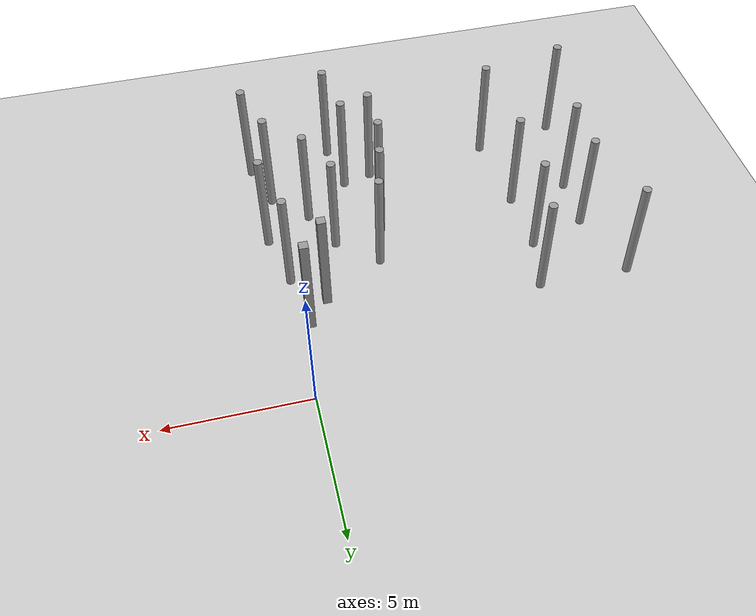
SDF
<sdf version="1.6">
 <world name="default">
  <model name="ground_plane">
   <static>1</static>
   <link name="link">
    <collision name="collision">
     <geometry><plane><normal>0 0 1</normal><size>100 100</size></plane></geometry>
    </collision>
    <visual name="visual">
     <cast_shadows>0</cast_shadows>
     <geometry><plane><normal>0 0 1</normal><size>100 100</size></plane></geometry>
     <material>
      <script><uri>file://media/materials/scripts/gazebo.material</uri><name>Gazebo/Gray</name></script>
     </material>
    </visual>
   </link>
  </model>
  <model name="unit_cylinder_clone_1_clone">
   <link name="link">
    <inertial>
     <mass>1000</mass>
     <inertia><ixx>145.833</ixx><ixy>0</ixy><ixz>0</ixz><iyy>145.833</iyy><iyz>0</iyz><izz>125</izz></inertia>
    </inertial>
    <visual name="visual">
     <geometry><cylinder><radius>0.15</radius><length>4</length></cylinder></geometry>
     <material>
      <script><name>Gazebo/Grey</name><uri>file://media/materials/scripts/gazebo.material</uri></script>
      <shader type="vertex"><normal_map>__default__</normal_map></shader>
      <ambient>0.3 0.3 0.3 1</ambient>
      <diffuse>0.7 0.7 0.7 1</diffuse>
      <specular>0.01 0.01 0.01 1</specular>
      <emissive>0 0 0 1</emissive>
     </material>
    </visual>
    <collision name="collision">
     <geometry><cylinder><radius>0.15</radius><length>4</length></cylinder></geometry>
     <surface>
      <friction>
       <ode><mu>1</mu><mu2>1</mu2><fdir1>0 0 0</fdir1><slip1>0</slip1><slip2>0</slip2></ode>
       <torsional>
        <coefficient>1</coefficient>
        <patch_radius>0</patch_radius>
        <surface_radius>0</surface_radius>
        <use_patch_radius>1</use_patch_radius>
        <ode><slip>0</slip></ode>
       </torsional>
      </friction>
      <bounce><restitution_coefficient>0</restitution_coefficient><threshold>1e+06</threshold></bounce>
      <contact>
       <collide_without_contact>0</collide_without_contact>
       <collide_without_contact_bitmask>1</collide_without_contact_bitmask>
       <collide_bitmask>1</collide_bitmask>
       <ode>
        <soft_cfm>0</soft_cfm>
        <soft_erp>0.2</soft_erp>
        <kp>1e+13</kp>
        <kd>1</kd>
        <max_vel>0.01</max_vel>
        <min_depth>0</min_depth>
       </ode>
       <bullet>
        <split_impulse>1</split_impulse>
        <split_impulse_penetration_threshold>-0.01</split_impulse_penetration_threshold>
        <soft_cfm>0</soft_cfm>
        <soft_erp>0.2</soft_erp>
        <kp>1e+13</kp>
        <kd>1</kd>
       </bullet>
      </contact>
     </surface>
    </collision>
   </link>
   <static>0</static>
   <pose>-1.24219 -8.02997 1.99995 -0.000268 5e-05 -0.609629</pose>
  </model>
  <model name="unit_cylinder_clone_1_clone_0">
   <link name="link">
    <inertial>
     <mass>1000</mass>
     <inertia><ixx>145.833</ixx><ixy>0</ixy><ixz>0</ixz><iyy>145.833</iyy><iyz>0</iyz><izz>125</izz></inertia>
    </inertial>
    <visual name="visual">
     <geometry><cylinder><radius>0.15</radius><length>4</length></cylinder></geometry>
     <material>
      <script><name>Gazebo/Grey</name><uri>file://media/materials/scripts/gazebo.material</uri></script>
      <shader type="vertex"><normal_map>__default__</normal_map></shader>
      <ambient>0.3 0.3 0.3 1</ambient>
      <diffuse>0.7 0.7 0.7 1</diffuse>
      <specular>0.01 0.01 0.01 1</specular>
      <emissive>0 0 0 1</emissive>
     </material>
    </visual>
    <collision name="collision">
     <geometry><cylinder><radius>0.15</radius><length>4</length></cylinder></geometry>
     <surface>
      <friction>
       <ode><mu>1</mu><mu2>1</mu2><fdir1>0 0 0</fdir1><slip1>0</slip1><slip2>0</slip2></ode>
       <torsional>
        <coefficient>1</coefficient>
        <patch_radius>0</patch_radius>
        <surface_radius>0</surface_radius>
        <use_patch_radius>1</use_patch_radius>
        <ode><slip>0</slip></ode>
       </torsional>
      </friction>
      <bounce><restitution_coefficient>0</restitution_coefficient><threshold>1e+06</threshold></bounce>
      <contact>
       <collide_without_contact>0</collide_without_contact>
       <collide_without_contact_bitmask>1</collide_without_contact_bitmask>
       <collide_bitmask>1</collide_bitmask>
       <ode>
        <soft_cfm>0</soft_cfm>
        <soft_erp>0.2</soft_erp>
        <kp>1e+13</kp>
        <kd>1</kd>
        <max_vel>0.01</max_vel>
        <min_depth>0</min_depth>
       </ode>
       <bullet>
        <split_impulse>1</split_impulse>
        <split_impulse_penetration_threshold>-0.01</split_impulse_penetration_threshold>
        <soft_cfm>0</soft_cfm>
        <soft_erp>0.2</soft_erp>
        <kp>1e+13</kp>
        <kd>1</kd>
       </bullet>
      </contact>
     </surface>
    </collision>
   </link>
   <static>0</static>
   <pose>-8.58132 -2.84777 1.99995 -0.000268 4.9e-05 -0.612535</pose>
  </model>
  <model name="unit_cylinder_clone_1_clone_1">
   <link name="link">
    <inertial>
     <mass>1000</mass>
     <inertia><ixx>145.833</ixx><ixy>0</ixy><ixz>0</ixz><iyy>145.833</iyy><iyz>0</iyz><izz>125</izz></inertia>
    </inertial>
    <visual name="visual">
     <geometry><cylinder><radius>0.15</radius><length>4</length></cylinder></geometry>
     <material>
      <script><name>Gazebo/Grey</name><uri>file://media/materials/scripts/gazebo.material</uri></script>
      <shader type="vertex"><normal_map>__default__</normal_map></shader>
      <ambient>0.3 0.3 0.3 1</ambient>
      <diffuse>0.7 0.7 0.7 1</diffuse>
      <specular>0.01 0.01 0.01 1</specular>
      <emissive>0 0 0 1</emissive>
     </material>
    </visual>
    <collision name="collision">
     <geometry><cylinder><radius>0.15</radius><length>4</length></cylinder></geometry>
     <surface>
      <friction>
       <ode><mu>1</mu><mu2>1</mu2><fdir1>0 0 0</fdir1><slip1>0</slip1><slip2>0</slip2></ode>
       <torsional>
        <coefficient>1</coefficient>
        <patch_radius>0</patch_radius>
        <surface_radius>0</surface_radius>
        <use_patch_radius>1</use_patch_radius>
        <ode><slip>0</slip></ode>
       </torsional>
      </friction>
      <bounce><restitution_coefficient>0</restitution_coefficient><threshold>1e+06</threshold></bounce>
      <contact>
       <collide_without_contact>0</collide_without_contact>
       <collide_without_contact_bitmask>1</collide_without_contact_bitmask>
       <collide_bitmask>1</collide_bitmask>
       <ode>
        <soft_cfm>0</soft_cfm>
        <soft_erp>0.2</soft_erp>
        <kp>1e+13</kp>
        <kd>1</kd>
        <max_vel>0.01</max_vel>
        <min_depth>0</min_depth>
       </ode>
       <bullet>
        <split_impulse>1</split_impulse>
        <split_impulse_penetration_threshold>-0.01</split_impulse_penetration_threshold>
        <soft_cfm>0</soft_cfm>
        <soft_erp>0.2</soft_erp>
        <kp>1e+13</kp>
        <kd>1</kd>
       </bullet>
      </contact>
     </surface>
    </collision>
   </link>
   <static>0</static>
   <pose>-11.8187 -2.82498 1.99995 -0.000268 4.8e-05 -0.615928</pose>
  </model>
  <model name="unit_cylinder_clone_1_clone_2">
   <link name="link">
    <inertial>
     <mass>1000</mass>
     <inertia><ixx>145.833</ixx><ixy>0</ixy><ixz>0</ixz><iyy>145.833</iyy><iyz>0</iyz><izz>125</izz></inertia>
    </inertial>
    <visual name="visual">
     <geometry><cylinder><radius>0.15</radius><length>4</length></cylinder></geometry>
     <material>
      <script><name>Gazebo/Grey</name><uri>file://media/materials/scripts/gazebo.material</uri></script>
      <shader type="vertex"><normal_map>__default__</normal_map></shader>
      <ambient>0.3 0.3 0.3 1</ambient>
      <diffuse>0.7 0.7 0.7 1</diffuse>
      <specular>0.01 0.01 0.01 1</specular>
      <emissive>0 0 0 1</emissive>
     </material>
    </visual>
    <collision name="collision">
     <geometry><cylinder><radius>0.15</radius><length>4</length></cylinder></geometry>
     <surface>
      <friction>
       <ode><mu>1</mu><mu2>1</mu2><fdir1>0 0 0</fdir1><slip1>0</slip1><slip2>0</slip2></ode>
       <torsional>
        <coefficient>1</coefficient>
        <patch_radius>0</patch_radius>
        <surface_radius>0</surface_radius>
        <use_patch_radius>1</use_patch_radius>
        <ode><slip>0</slip></ode>
       </torsional>
      </friction>
      <bounce><restitution_coefficient>0</restitution_coefficient><threshold>1e+06</threshold></bounce>
      <contact>
       <collide_without_contact>0</collide_without_contact>
       <collide_without_contact_bitmask>1</collide_without_contact_bitmask>
       <collide_bitmask>1</collide_bitmask>
       <ode>
        <soft_cfm>0</soft_cfm>
        <soft_erp>0.2</soft_erp>
        <kp>1e+13</kp>
        <kd>1</kd>
        <max_vel>0.01</max_vel>
        <min_depth>0</min_depth>
       </ode>
       <bullet>
        <split_impulse>1</split_impulse>
        <split_impulse_penetration_threshold>-0.01</split_impulse_penetration_threshold>
        <soft_cfm>0</soft_cfm>
        <soft_erp>0.2</soft_erp>
        <kp>1e+13</kp>
        <kd>1</kd>
       </bullet>
      </contact>
     </surface>
    </collision>
   </link>
   <static>0</static>
   <pose>-3.71601 -6.77769 1.99995 -0.000268 4.9e-05 -0.611275</pose>
  </model>
  <model name="unit_cylinder_clone_1_clone_4">
   <link name="link">
    <inertial>
     <mass>1000</mass>
     <inertia><ixx>145.833</ixx><ixy>0</ixy><ixz>0</ixz><iyy>145.833</iyy><iyz>0</iyz><izz>125</izz></inertia>
    </inertial>
    <visual name="visual">
     <geometry><cylinder><radius>0.15</radius><length>4</length></cylinder></geometry>
     <material>
      <script><name>Gazebo/Grey</name><uri>file://media/materials/scripts/gazebo.material</uri></script>
      <shader type="vertex"><normal_map>__default__</normal_map></shader>
      <ambient>0.3 0.3 0.3 1</ambient>
      <diffuse>0.7 0.7 0.7 1</diffuse>
      <specular>0.01 0.01 0.01 1</specular>
      <emissive>0 0 0 1</emissive>
     </material>
    </visual>
    <collision name="collision">
     <geometry><cylinder><radius>0.15</radius><length>4</length></cylinder></geometry>
     <surface>
      <friction>
       <ode><mu>1</mu><mu2>1</mu2><fdir1>0 0 0</fdir1><slip1>0</slip1><slip2>0</slip2></ode>
       <torsional>
        <coefficient>1</coefficient>
        <patch_radius>0</patch_radius>
        <surface_radius>0</surface_radius>
        <use_patch_radius>1</use_patch_radius>
        <ode><slip>0</slip></ode>
       </torsional>
      </friction>
      <bounce><restitution_coefficient>0</restitution_coefficient><threshold>1e+06</threshold></bounce>
      <contact>
       <collide_without_contact>0</collide_without_contact>
       <collide_without_contact_bitmask>1</collide_without_contact_bitmask>
       <collide_bitmask>1</collide_bitmask>
       <ode>
        <soft_cfm>0</soft_cfm>
        <soft_erp>0.2</soft_erp>
        <kp>1e+13</kp>
        <kd>1</kd>
        <max_vel>0.01</max_vel>
        <min_depth>0</min_depth>
       </ode>
       <bullet>
        <split_impulse>1</split_impulse>
        <split_impulse_penetration_threshold>-0.01</split_impulse_penetration_threshold>
        <soft_cfm>0</soft_cfm>
        <soft_erp>0.2</soft_erp>
        <kp>1e+13</kp>
        <kd>1</kd>
       </bullet>
      </contact>
     </surface>
    </collision>
   </link>
   <static>0</static>
   <pose>-8.97423 -4.77599 1.99995 -0.000268 4.8e-05 -0.61789</pose>
  </model>
  <model name="unit_cylinder_clone_1_clone_6">
   <link name="link">
    <inertial>
     <mass>1000</mass>
     <inertia><ixx>145.833</ixx><ixy>0</ixy><ixz>0</ixz><iyy>145.833</iyy><iyz>0</iyz><izz>125</izz></inertia>
    </inertial>
    <visual name="visual">
     <geometry><cylinder><radius>0.15</radius><length>4</length></cylinder></geometry>
     <material>
      <script><name>Gazebo/Grey</name><uri>file://media/materials/scripts/gazebo.material</uri></script>
      <shader type="vertex"><normal_map>__default__</normal_map></shader>
      <ambient>0.3 0.3 0.3 1</ambient>
      <diffuse>0.7 0.7 0.7 1</diffuse>
      <specular>0.01 0.01 0.01 1</specular>
      <emissive>0 0 0 1</emissive>
     </material>
    </visual>
    <collision name="collision">
     <geometry><cylinder><radius>0.15</radius><length>4</length></cylinder></geometry>
     <surface>
      <friction>
       <ode><mu>1</mu><mu2>1</mu2><fdir1>0 0 0</fdir1><slip1>0</slip1><slip2>0</slip2></ode>
       <torsional>
        <coefficient>1</coefficient>
        <patch_radius>0</patch_radius>
        <surface_radius>0</surface_radius>
        <use_patch_radius>1</use_patch_radius>
        <ode><slip>0</slip></ode>
       </torsional>
      </friction>
      <bounce><restitution_coefficient>0</restitution_coefficient><threshold>1e+06</threshold></bounce>
      <contact>
       <collide_without_contact>0</collide_without_contact>
       <collide_without_contact_bitmask>1</collide_without_contact_bitmask>
       <collide_bitmask>1</collide_bitmask>
       <ode>
        <soft_cfm>0</soft_cfm>
        <soft_erp>0.2</soft_erp>
        <kp>1e+13</kp>
        <kd>1</kd>
        <max_vel>0.01</max_vel>
        <min_depth>0</min_depth>
       </ode>
       <bullet>
        <split_impulse>1</split_impulse>
        <split_impulse_penetration_threshold>-0.01</split_impulse_penetration_threshold>
        <soft_cfm>0</soft_cfm>
        <soft_erp>0.2</soft_erp>
        <kp>1e+13</kp>
        <kd>1</kd>
       </bullet>
      </contact>
     </surface>
    </collision>
   </link>
   <static>0</static>
   <pose>-3.34627 -5.28496 1.99998 -1e-06 1e-06 -0.15048</pose>
  </model>
  <model name="unit_cylinder_clone_1_clone_10">
   <link name="link">
    <inertial>
     <mass>1000</mass>
     <inertia><ixx>145.833</ixx><ixy>0</ixy><ixz>0</ixz><iyy>145.833</iyy><iyz>0</iyz><izz>125</izz></inertia>
    </inertial>
    <visual name="visual">
     <geometry><cylinder><radius>0.15</radius><length>4</length></cylinder></geometry>
     <material>
      <script><name>Gazebo/Grey</name><uri>file://media/materials/scripts/gazebo.material</uri></script>
      <shader type="vertex"><normal_map>__default__</normal_map></shader>
      <ambient>0.3 0.3 0.3 1</ambient>
      <diffuse>0.7 0.7 0.7 1</diffuse>
      <specular>0.01 0.01 0.01 1</specular>
      <emissive>0 0 0 1</emissive>
     </material>
    </visual>
    <collision name="collision">
     <geometry><cylinder><radius>0.15</radius><length>4</length></cylinder></geometry>
     <surface>
      <friction>
       <ode><mu>1</mu><mu2>1</mu2><fdir1>0 0 0</fdir1><slip1>0</slip1><slip2>0</slip2></ode>
       <torsional>
        <coefficient>1</coefficient>
        <patch_radius>0</patch_radius>
        <surface_radius>0</surface_radius>
        <use_patch_radius>1</use_patch_radius>
        <ode><slip>0</slip></ode>
       </torsional>
      </friction>
      <bounce><restitution_coefficient>0</restitution_coefficient><threshold>1e+06</threshold></bounce>
      <contact>
       <collide_without_contact>0</collide_without_contact>
       <collide_without_contact_bitmask>1</collide_without_contact_bitmask>
       <collide_bitmask>1</collide_bitmask>
       <ode>
        <soft_cfm>0</soft_cfm>
        <soft_erp>0.2</soft_erp>
        <kp>1e+13</kp>
        <kd>1</kd>
        <max_vel>0.01</max_vel>
        <min_depth>0</min_depth>
       </ode>
       <bullet>
        <split_impulse>1</split_impulse>
        <split_impulse_penetration_threshold>-0.01</split_impulse_penetration_threshold>
        <soft_cfm>0</soft_cfm>
        <soft_erp>0.2</soft_erp>
        <kp>1e+13</kp>
        <kd>1</kd>
       </bullet>
      </contact>
     </surface>
    </collision>
   </link>
   <static>0</static>
   <pose>-0.053584 -5.11288 1.99998 -2e-06 -1e-06 -0.123791</pose>
  </model>
  <model name="unit_cylinder_clone_1_clone_15">
   <link name="link">
    <inertial>
     <mass>1000</mass>
     <inertia><ixx>145.833</ixx><ixy>0</ixy><ixz>0</ixz><iyy>145.833</iyy><iyz>0</iyz><izz>125</izz></inertia>
    </inertial>
    <visual name="visual">
     <geometry><cylinder><radius>0.15</radius><length>4</length></cylinder></geometry>
     <material>
      <script><name>Gazebo/Grey</name><uri>file://media/materials/scripts/gazebo.material</uri></script>
      <shader type="vertex"><normal_map>__default__</normal_map></shader>
      <ambient>0.3 0.3 0.3 1</ambient>
      <diffuse>0.7 0.7 0.7 1</diffuse>
      <specular>0.01 0.01 0.01 1</specular>
      <emissive>0 0 0 1</emissive>
     </material>
    </visual>
    <collision name="collision">
     <geometry><cylinder><radius>0.15</radius><length>4</length></cylinder></geometry>
     <surface>
      <friction>
       <ode><mu>1</mu><mu2>1</mu2><fdir1>0 0 0</fdir1><slip1>0</slip1><slip2>0</slip2></ode>
       <torsional>
        <coefficient>1</coefficient>
        <patch_radius>0</patch_radius>
        <surface_radius>0</surface_radius>
        <use_patch_radius>1</use_patch_radius>
        <ode><slip>0</slip></ode>
       </torsional>
      </friction>
      <bounce><restitution_coefficient>0</restitution_coefficient><threshold>1e+06</threshold></bounce>
      <contact>
       <collide_without_contact>0</collide_without_contact>
       <collide_without_contact_bitmask>1</collide_without_contact_bitmask>
       <collide_bitmask>1</collide_bitmask>
       <ode>
        <soft_cfm>0</soft_cfm>
        <soft_erp>0.2</soft_erp>
        <kp>1e+13</kp>
        <kd>1</kd>
        <max_vel>0.01</max_vel>
        <min_depth>0</min_depth>
       </ode>
       <bullet>
        <split_impulse>1</split_impulse>
        <split_impulse_penetration_threshold>-0.01</split_impulse_penetration_threshold>
        <soft_cfm>0</soft_cfm>
        <soft_erp>0.2</soft_erp>
        <kp>1e+13</kp>
        <kd>1</kd>
       </bullet>
      </contact>
     </surface>
    </collision>
   </link>
   <static>0</static>
   <pose>-11.0822 -7.38638 1.99995 -0.000268 4.9e-05 -0.6131</pose>
  </model>
  <model name="unit_cylinder_clone_1_clone_16">
   <link name="link">
    <inertial>
     <mass>1000</mass>
     <inertia><ixx>145.833</ixx><ixy>0</ixy><ixz>0</ixz><iyy>145.833</iyy><iyz>0</iyz><izz>125</izz></inertia>
    </inertial>
    <visual name="visual">
     <geometry><cylinder><radius>0.15</radius><length>4</length></cylinder></geometry>
     <material>
      <script><name>Gazebo/Grey</name><uri>file://media/materials/scripts/gazebo.material</uri></script>
      <shader type="vertex"><normal_map>__default__</normal_map></shader>
      <ambient>0.3 0.3 0.3 1</ambient>
      <diffuse>0.7 0.7 0.7 1</diffuse>
      <specular>0.01 0.01 0.01 1</specular>
      <emissive>0 0 0 1</emissive>
     </material>
    </visual>
    <collision name="collision">
     <geometry><cylinder><radius>0.15</radius><length>4</length></cylinder></geometry>
     <surface>
      <friction>
       <ode><mu>1</mu><mu2>1</mu2><fdir1>0 0 0</fdir1><slip1>0</slip1><slip2>0</slip2></ode>
       <torsional>
        <coefficient>1</coefficient>
        <patch_radius>0</patch_radius>
        <surface_radius>0</surface_radius>
        <use_patch_radius>1</use_patch_radius>
        <ode><slip>0</slip></ode>
       </torsional>
      </friction>
      <bounce><restitution_coefficient>0</restitution_coefficient><threshold>1e+06</threshold></bounce>
      <contact>
       <collide_without_contact>0</collide_without_contact>
       <collide_without_contact_bitmask>1</collide_without_contact_bitmask>
       <collide_bitmask>1</collide_bitmask>
       <ode>
        <soft_cfm>0</soft_cfm>
        <soft_erp>0.2</soft_erp>
        <kp>1e+13</kp>
        <kd>1</kd>
        <max_vel>0.01</max_vel>
        <min_depth>0</min_depth>
       </ode>
       <bullet>
        <split_impulse>1</split_impulse>
        <split_impulse_penetration_threshold>-0.01</split_impulse_penetration_threshold>
        <soft_cfm>0</soft_cfm>
        <soft_erp>0.2</soft_erp>
        <kp>1e+13</kp>
        <kd>1</kd>
       </bullet>
      </contact>
     </surface>
    </collision>
   </link>
   <static>0</static>
   <pose>-1.95649 -6.46922 1.99995 -0.000268 4.9e-05 -0.614828</pose>
  </model>
  <model name="unit_cylinder_clone_1_clone_17">
   <link name="link">
    <inertial>
     <mass>1000</mass>
     <inertia><ixx>145.833</ixx><ixy>0</ixy><ixz>0</ixz><iyy>145.833</iyy><iyz>0</iyz><izz>125</izz></inertia>
    </inertial>
    <visual name="visual">
     <geometry><cylinder><radius>0.15</radius><length>4</length></cylinder></geometry>
     <material>
      <script><name>Gazebo/Grey</name><uri>file://media/materials/scripts/gazebo.material</uri></script>
      <shader type="vertex"><normal_map>__default__</normal_map></shader>
      <ambient>0.3 0.3 0.3 1</ambient>
      <diffuse>0.7 0.7 0.7 1</diffuse>
      <specular>0.01 0.01 0.01 1</specular>
      <emissive>0 0 0 1</emissive>
     </material>
    </visual>
    <collision name="collision">
     <geometry><cylinder><radius>0.15</radius><length>4</length></cylinder></geometry>
     <surface>
      <friction>
       <ode><mu>1</mu><mu2>1</mu2><fdir1>0 0 0</fdir1><slip1>0</slip1><slip2>0</slip2></ode>
       <torsional>
        <coefficient>1</coefficient>
        <patch_radius>0</patch_radius>
        <surface_radius>0</surface_radius>
        <use_patch_radius>1</use_patch_radius>
        <ode><slip>0</slip></ode>
       </torsional>
      </friction>
      <bounce><restitution_coefficient>0</restitution_coefficient><threshold>1e+06</threshold></bounce>
      <contact>
       <collide_without_contact>0</collide_without_contact>
       <collide_without_contact_bitmask>1</collide_without_contact_bitmask>
       <collide_bitmask>1</collide_bitmask>
       <ode>
        <soft_cfm>0</soft_cfm>
        <soft_erp>0.2</soft_erp>
        <kp>1e+13</kp>
        <kd>1</kd>
        <max_vel>0.01</max_vel>
        <min_depth>0</min_depth>
       </ode>
       <bullet>
        <split_impulse>1</split_impulse>
        <split_impulse_penetration_threshold>-0.01</split_impulse_penetration_threshold>
        <soft_cfm>0</soft_cfm>
        <soft_erp>0.2</soft_erp>
        <kp>1e+13</kp>
        <kd>1</kd>
       </bullet>
      </contact>
     </surface>
    </collision>
   </link>
   <static>0</static>
   <pose>-0.042459 -9.19718 1.99995 -0.000268 4.8e-05 -0.617888</pose>
  </model>
  <model name="unit_cylinder_clone_1_clone_18">
   <link name="link">
    <inertial>
     <mass>1000</mass>
     <inertia><ixx>145.833</ixx><ixy>0</ixy><ixz>0</ixz><iyy>145.833</iyy><iyz>0</iyz><izz>125</izz></inertia>
    </inertial>
    <visual name="visual">
     <geometry><cylinder><radius>0.15</radius><length>4</length></cylinder></geometry>
     <material>
      <script><name>Gazebo/Grey</name><uri>file://media/materials/scripts/gazebo.material</uri></script>
      <shader type="vertex"><normal_map>__default__</normal_map></shader>
      <ambient>0.3 0.3 0.3 1</ambient>
      <diffuse>0.7 0.7 0.7 1</diffuse>
      <specular>0.01 0.01 0.01 1</specular>
      <emissive>0 0 0 1</emissive>
     </material>
    </visual>
    <collision name="collision">
     <geometry><cylinder><radius>0.15</radius><length>4</length></cylinder></geometry>
     <surface>
      <friction>
       <ode><mu>1</mu><mu2>1</mu2><fdir1>0 0 0</fdir1><slip1>0</slip1><slip2>0</slip2></ode>
       <torsional>
        <coefficient>1</coefficient>
        <patch_radius>0</patch_radius>
        <surface_radius>0</surface_radius>
        <use_patch_radius>1</use_patch_radius>
        <ode><slip>0</slip></ode>
       </torsional>
      </friction>
      <bounce><restitution_coefficient>0</restitution_coefficient><threshold>1e+06</threshold></bounce>
      <contact>
       <collide_without_contact>0</collide_without_contact>
       <collide_without_contact_bitmask>1</collide_without_contact_bitmask>
       <collide_bitmask>1</collide_bitmask>
       <ode>
        <soft_cfm>0</soft_cfm>
        <soft_erp>0.2</soft_erp>
        <kp>1e+13</kp>
        <kd>1</kd>
        <max_vel>0.01</max_vel>
        <min_depth>0</min_depth>
       </ode>
       <bullet>
        <split_impulse>1</split_impulse>
        <split_impulse_penetration_threshold>-0.01</split_impulse_penetration_threshold>
        <soft_cfm>0</soft_cfm>
        <soft_erp>0.2</soft_erp>
        <kp>1e+13</kp>
        <kd>1</kd>
       </bullet>
      </contact>
     </surface>
    </collision>
   </link>
   <static>0</static>
   <pose>-11.5534 -10.7692 1.99995 -0.000268 4.8e-05 -0.616786</pose>
  </model>
  <model name="unit_cylinder_clone_1_clone_20">
   <link name="link">
    <inertial>
     <mass>1000</mass>
     <inertia><ixx>145.833</ixx><ixy>0</ixy><ixz>0</ixz><iyy>145.833</iyy><iyz>0</iyz><izz>125</izz></inertia>
    </inertial>
    <visual name="visual">
     <geometry><cylinder><radius>0.15</radius><length>4</length></cylinder></geometry>
     <material>
      <script><name>Gazebo/Grey</name><uri>file://media/materials/scripts/gazebo.material</uri></script>
      <shader type="vertex"><normal_map>__default__</normal_map></shader>
      <ambient>0.3 0.3 0.3 1</ambient>
      <diffuse>0.7 0.7 0.7 1</diffuse>
      <specular>0.01 0.01 0.01 1</specular>
      <emissive>0 0 0 1</emissive>
     </material>
    </visual>
    <collision name="collision">
     <geometry><cylinder><radius>0.15</radius><length>4</length></cylinder></geometry>
     <surface>
      <friction>
       <ode><mu>1</mu><mu2>1</mu2><fdir1>0 0 0</fdir1><slip1>0</slip1><slip2>0</slip2></ode>
       <torsional>
        <coefficient>1</coefficient>
        <patch_radius>0</patch_radius>
        <surface_radius>0</surface_radius>
        <use_patch_radius>1</use_patch_radius>
        <ode><slip>0</slip></ode>
       </torsional>
      </friction>
      <bounce><restitution_coefficient>0</restitution_coefficient><threshold>1e+06</threshold></bounce>
      <contact>
       <collide_without_contact>0</collide_without_contact>
       <collide_without_contact_bitmask>1</collide_without_contact_bitmask>
       <collide_bitmask>1</collide_bitmask>
       <ode>
        <soft_cfm>0</soft_cfm>
        <soft_erp>0.2</soft_erp>
        <kp>1e+13</kp>
        <kd>1</kd>
        <max_vel>0.01</max_vel>
        <min_depth>0</min_depth>
       </ode>
       <bullet>
        <split_impulse>1</split_impulse>
        <split_impulse_penetration_threshold>-0.01</split_impulse_penetration_threshold>
        <soft_cfm>0</soft_cfm>
        <soft_erp>0.2</soft_erp>
        <kp>1e+13</kp>
        <kd>1</kd>
       </bullet>
      </contact>
     </surface>
    </collision>
   </link>
   <static>0</static>
   <pose>0.414595 -7.13664 1.99995 -0.000268 4.8e-05 -0.615395</pose>
  </model>
  <model name="unit_cylinder_clone_1_clone_21">
   <link name="link">
    <inertial>
     <mass>1000</mass>
     <inertia><ixx>145.833</ixx><ixy>0</ixy><ixz>0</ixz><iyy>145.833</iyy><iyz>0</iyz><izz>125</izz></inertia>
    </inertial>
    <visual name="visual">
     <geometry><cylinder><radius>0.15</radius><length>4</length></cylinder></geometry>
     <material>
      <script><name>Gazebo/Grey</name><uri>file://media/materials/scripts/gazebo.material</uri></script>
      <shader type="vertex"><normal_map>__default__</normal_map></shader>
      <ambient>0.3 0.3 0.3 1</ambient>
      <diffuse>0.7 0.7 0.7 1</diffuse>
      <specular>0.01 0.01 0.01 1</specular>
      <emissive>0 0 0 1</emissive>
     </material>
    </visual>
    <collision name="collision">
     <geometry><cylinder><radius>0.15</radius><length>4</length></cylinder></geometry>
     <surface>
      <friction>
       <ode><mu>1</mu><mu2>1</mu2><fdir1>0 0 0</fdir1><slip1>0</slip1><slip2>0</slip2></ode>
       <torsional>
        <coefficient>1</coefficient>
        <patch_radius>0</patch_radius>
        <surface_radius>0</surface_radius>
        <use_patch_radius>1</use_patch_radius>
        <ode><slip>0</slip></ode>
       </torsional>
      </friction>
      <bounce><restitution_coefficient>0</restitution_coefficient><threshold>1e+06</threshold></bounce>
      <contact>
       <collide_without_contact>0</collide_without_contact>
       <collide_without_contact_bitmask>1</collide_without_contact_bitmask>
       <collide_bitmask>1</collide_bitmask>
       <ode>
        <soft_cfm>0</soft_cfm>
        <soft_erp>0.2</soft_erp>
        <kp>1e+13</kp>
        <kd>1</kd>
        <max_vel>0.01</max_vel>
        <min_depth>0</min_depth>
       </ode>
       <bullet>
        <split_impulse>1</split_impulse>
        <split_impulse_penetration_threshold>-0.01</split_impulse_penetration_threshold>
        <soft_cfm>0</soft_cfm>
        <soft_erp>0.2</soft_erp>
        <kp>1e+13</kp>
        <kd>1</kd>
       </bullet>
      </contact>
     </surface>
    </collision>
   </link>
   <static>0</static>
   <pose>0.481213 -10.9428 1.99995 -0.000268 4.9e-05 -0.611554</pose>
  </model>
  <model name="unit_cylinder_clone_1_clone_25">
   <link name="link">
    <inertial>
     <mass>1000</mass>
     <inertia><ixx>145.833</ixx><ixy>0</ixy><ixz>0</ixz><iyy>145.833</iyy><iyz>0</iyz><izz>125</izz></inertia>
    </inertial>
    <visual name="visual">
     <geometry><cylinder><radius>0.15</radius><length>4</length></cylinder></geometry>
     <material>
      <script><name>Gazebo/Grey</name><uri>file://media/materials/scripts/gazebo.material</uri></script>
      <shader type="vertex"><normal_map>__default__</normal_map></shader>
      <ambient>0.3 0.3 0.3 1</ambient>
      <diffuse>0.7 0.7 0.7 1</diffuse>
      <specular>0.01 0.01 0.01 1</specular>
      <emissive>0 0 0 1</emissive>
     </material>
    </visual>
    <collision name="collision">
     <geometry><cylinder><radius>0.15</radius><length>4</length></cylinder></geometry>
     <surface>
      <friction>
       <ode><mu>1</mu><mu2>1</mu2><fdir1>0 0 0</fdir1><slip1>0</slip1><slip2>0</slip2></ode>
       <torsional>
        <coefficient>1</coefficient>
        <patch_radius>0</patch_radius>
        <surface_radius>0</surface_radius>
        <use_patch_radius>1</use_patch_radius>
        <ode><slip>0</slip></ode>
       </torsional>
      </friction>
      <bounce><restitution_coefficient>0</restitution_coefficient><threshold>1e+06</threshold></bounce>
      <contact>
       <collide_without_contact>0</collide_without_contact>
       <collide_without_contact_bitmask>1</collide_without_contact_bitmask>
       <collide_bitmask>1</collide_bitmask>
       <ode>
        <soft_cfm>0</soft_cfm>
        <soft_erp>0.2</soft_erp>
        <kp>1e+13</kp>
        <kd>1</kd>
        <max_vel>0.01</max_vel>
        <min_depth>0</min_depth>
       </ode>
       <bullet>
        <split_impulse>1</split_impulse>
        <split_impulse_penetration_threshold>-0.01</split_impulse_penetration_threshold>
        <soft_cfm>0</soft_cfm>
        <soft_erp>0.2</soft_erp>
        <kp>1e+13</kp>
        <kd>1</kd>
       </bullet>
      </contact>
     </surface>
    </collision>
   </link>
   <static>0</static>
   <pose>-11.0318 -5.45687 1.99995 -0.000268 4.8e-05 -0.61788</pose>
  </model>
  <model name="unit_cylinder_clone_1_clone_26">
   <link name="link">
    <inertial>
     <mass>1000</mass>
     <inertia><ixx>145.833</ixx><ixy>0</ixy><ixz>0</ixz><iyy>145.833</iyy><iyz>0</iyz><izz>125</izz></inertia>
    </inertial>
    <visual name="visual">
     <geometry><cylinder><radius>0.15</radius><length>4</length></cylinder></geometry>
     <material>
      <script><name>Gazebo/Grey</name><uri>file://media/materials/scripts/gazebo.material</uri></script>
      <shader type="vertex"><normal_map>__default__</normal_map></shader>
      <ambient>0.3 0.3 0.3 1</ambient>
      <diffuse>0.7 0.7 0.7 1</diffuse>
      <specular>0.01 0.01 0.01 1</specular>
      <emissive>0 0 0 1</emissive>
     </material>
    </visual>
    <collision name="collision">
     <geometry><cylinder><radius>0.15</radius><length>4</length></cylinder></geometry>
     <surface>
      <friction>
       <ode><mu>1</mu><mu2>1</mu2><fdir1>0 0 0</fdir1><slip1>0</slip1><slip2>0</slip2></ode>
       <torsional>
        <coefficient>1</coefficient>
        <patch_radius>0</patch_radius>
        <surface_radius>0</surface_radius>
        <use_patch_radius>1</use_patch_radius>
        <ode><slip>0</slip></ode>
       </torsional>
      </friction>
      <bounce><restitution_coefficient>0</restitution_coefficient><threshold>1e+06</threshold></bounce>
      <contact>
       <collide_without_contact>0</collide_without_contact>
       <collide_without_contact_bitmask>1</collide_without_contact_bitmask>
       <collide_bitmask>1</collide_bitmask>
       <ode>
        <soft_cfm>0</soft_cfm>
        <soft_erp>0.2</soft_erp>
        <kp>1e+13</kp>
        <kd>1</kd>
        <max_vel>0.01</max_vel>
        <min_depth>0</min_depth>
       </ode>
       <bullet>
        <split_impulse>1</split_impulse>
        <split_impulse_penetration_threshold>-0.01</split_impulse_penetration_threshold>
        <soft_cfm>0</soft_cfm>
        <soft_erp>0.2</soft_erp>
        <kp>1e+13</kp>
        <kd>1</kd>
       </bullet>
      </contact>
     </surface>
    </collision>
   </link>
   <static>0</static>
   <pose>-3.95077 -9.73667 1.99995 -0.000268 4.8e-05 -0.617034</pose>
  </model>
  <model name="unit_cylinder_clone_1_clone_27">
   <link name="link">
    <inertial>
     <mass>1000</mass>
     <inertia><ixx>145.833</ixx><ixy>0</ixy><ixz>0</ixz><iyy>145.833</iyy><iyz>0</iyz><izz>125</izz></inertia>
    </inertial>
    <visual name="visual">
     <geometry><cylinder><radius>0.15</radius><length>4</length></cylinder></geometry>
     <material>
      <script><name>Gazebo/Grey</name><uri>file://media/materials/scripts/gazebo.material</uri></script>
      <shader type="vertex"><normal_map>__default__</normal_map></shader>
      <ambient>0.3 0.3 0.3 1</ambient>
      <diffuse>0.7 0.7 0.7 1</diffuse>
      <specular>0.01 0.01 0.01 1</specular>
      <emissive>0 0 0 1</emissive>
     </material>
    </visual>
    <collision name="collision">
     <geometry><cylinder><radius>0.15</radius><length>4</length></cylinder></geometry>
     <surface>
      <friction>
       <ode><mu>1</mu><mu2>1</mu2><fdir1>0 0 0</fdir1><slip1>0</slip1><slip2>0</slip2></ode>
       <torsional>
        <coefficient>1</coefficient>
        <patch_radius>0</patch_radius>
        <surface_radius>0</surface_radius>
        <use_patch_radius>1</use_patch_radius>
        <ode><slip>0</slip></ode>
       </torsional>
      </friction>
      <bounce><restitution_coefficient>0</restitution_coefficient><threshold>1e+06</threshold></bounce>
      <contact>
       <collide_without_contact>0</collide_without_contact>
       <collide_without_contact_bitmask>1</collide_without_contact_bitmask>
       <collide_bitmask>1</collide_bitmask>
       <ode>
        <soft_cfm>0</soft_cfm>
        <soft_erp>0.2</soft_erp>
        <kp>1e+13</kp>
        <kd>1</kd>
        <max_vel>0.01</max_vel>
        <min_depth>0</min_depth>
       </ode>
       <bullet>
        <split_impulse>1</split_impulse>
        <split_impulse_penetration_threshold>-0.01</split_impulse_penetration_threshold>
        <soft_cfm>0</soft_cfm>
        <soft_erp>0.2</soft_erp>
        <kp>1e+13</kp>
        <kd>1</kd>
       </bullet>
      </contact>
     </surface>
    </collision>
   </link>
   <static>0</static>
   <pose>-3.9853 -8.18712 1.99995 -0.000268 4.9e-05 -0.611588</pose>
  </model>
  <model name="unit_cylinder_clone_1_clone_28">
   <link name="link">
    <inertial>
     <mass>1000</mass>
     <inertia><ixx>145.833</ixx><ixy>0</ixy><ixz>0</ixz><iyy>145.833</iyy><iyz>0</iyz><izz>125</izz></inertia>
    </inertial>
    <visual name="visual">
     <geometry><cylinder><radius>0.15</radius><length>4</length></cylinder></geometry>
     <material>
      <script><name>Gazebo/Grey</name><uri>file://media/materials/scripts/gazebo.material</uri></script>
      <shader type="vertex"><normal_map>__default__</normal_map></shader>
      <ambient>0.3 0.3 0.3 1</ambient>
      <diffuse>0.7 0.7 0.7 1</diffuse>
      <specular>0.01 0.01 0.01 1</specular>
      <emissive>0 0 0 1</emissive>
     </material>
    </visual>
    <collision name="collision">
     <geometry><cylinder><radius>0.15</radius><length>4</length></cylinder></geometry>
     <surface>
      <friction>
       <ode><mu>1</mu><mu2>1</mu2><fdir1>0 0 0</fdir1><slip1>0</slip1><slip2>0</slip2></ode>
       <torsional>
        <coefficient>1</coefficient>
        <patch_radius>0</patch_radius>
        <surface_radius>0</surface_radius>
        <use_patch_radius>1</use_patch_radius>
        <ode><slip>0</slip></ode>
       </torsional>
      </friction>
      <bounce><restitution_coefficient>0</restitution_coefficient><threshold>1e+06</threshold></bounce>
      <contact>
       <collide_without_contact>0</collide_without_contact>
       <collide_without_contact_bitmask>1</collide_without_contact_bitmask>
       <collide_bitmask>1</collide_bitmask>
       <ode>
        <soft_cfm>0</soft_cfm>
        <soft_erp>0.2</soft_erp>
        <kp>1e+13</kp>
        <kd>1</kd>
        <max_vel>0.01</max_vel>
        <min_depth>0</min_depth>
       </ode>
       <bullet>
        <split_impulse>1</split_impulse>
        <split_impulse_penetration_threshold>-0.01</split_impulse_penetration_threshold>
        <soft_cfm>0</soft_cfm>
        <soft_erp>0.2</soft_erp>
        <kp>1e+13</kp>
        <kd>1</kd>
       </bullet>
      </contact>
     </surface>
    </collision>
   </link>
   <static>0</static>
   <pose>-2.59435 -11.3711 1.99995 -0.000268 4.8e-05 -0.617889</pose>
  </model>
  <model name="unit_cylinder_clone_1_clone_30">
   <link name="link">
    <inertial>
     <mass>1000</mass>
     <inertia><ixx>145.833</ixx><ixy>0</ixy><ixz>0</ixz><iyy>145.833</iyy><iyz>0</iyz><izz>125</izz></inertia>
    </inertial>
    <visual name="visual">
     <geometry><cylinder><radius>0.15</radius><length>4</length></cylinder></geometry>
     <material>
      <script><name>Gazebo/Grey</name><uri>file://media/materials/scripts/gazebo.material</uri></script>
      <shader type="vertex"><normal_map>__default__</normal_map></shader>
      <ambient>0.3 0.3 0.3 1</ambient>
      <diffuse>0.7 0.7 0.7 1</diffuse>
      <specular>0.01 0.01 0.01 1</specular>
      <emissive>0 0 0 1</emissive>
     </material>
    </visual>
    <collision name="collision">
     <geometry><cylinder><radius>0.15</radius><length>4</length></cylinder></geometry>
     <surface>
      <friction>
       <ode><mu>1</mu><mu2>1</mu2><fdir1>0 0 0</fdir1><slip1>0</slip1><slip2>0</slip2></ode>
       <torsional>
        <coefficient>1</coefficient>
        <patch_radius>0</patch_radius>
        <surface_radius>0</surface_radius>
        <use_patch_radius>1</use_patch_radius>
        <ode><slip>0</slip></ode>
       </torsional>
      </friction>
      <bounce><restitution_coefficient>0</restitution_coefficient><threshold>1e+06</threshold></bounce>
      <contact>
       <collide_without_contact>0</collide_without_contact>
       <collide_without_contact_bitmask>1</collide_without_contact_bitmask>
       <collide_bitmask>1</collide_bitmask>
       <ode>
        <soft_cfm>0</soft_cfm>
        <soft_erp>0.2</soft_erp>
        <kp>1e+13</kp>
        <kd>1</kd>
        <max_vel>0.01</max_vel>
        <min_depth>0</min_depth>
       </ode>
       <bullet>
        <split_impulse>1</split_impulse>
        <split_impulse_penetration_threshold>-0.01</split_impulse_penetration_threshold>
        <soft_cfm>0</soft_cfm>
        <soft_erp>0.2</soft_erp>
        <kp>1e+13</kp>
        <kd>1</kd>
       </bullet>
      </contact>
     </surface>
    </collision>
   </link>
   <static>0</static>
   <pose>-8.55795 -10.191 1.99995 -0.000268 4.8e-05 -0.617875</pose>
  </model>
  <model name="unit_cylinder_clone_1_clone_31">
   <link name="link">
    <inertial>
     <mass>1000</mass>
     <inertia><ixx>145.833</ixx><ixy>0</ixy><ixz>0</ixz><iyy>145.833</iyy><iyz>0</iyz><izz>125</izz></inertia>
    </inertial>
    <visual name="visual">
     <geometry><cylinder><radius>0.15</radius><length>4</length></cylinder></geometry>
     <material>
      <script><name>Gazebo/Grey</name><uri>file://media/materials/scripts/gazebo.material</uri></script>
      <shader type="vertex"><normal_map>__default__</normal_map></shader>
      <ambient>0.3 0.3 0.3 1</ambient>
      <diffuse>0.7 0.7 0.7 1</diffuse>
      <specular>0.01 0.01 0.01 1</specular>
      <emissive>0 0 0 1</emissive>
     </material>
    </visual>
    <collision name="collision">
     <geometry><cylinder><radius>0.15</radius><length>4</length></cylinder></geometry>
     <surface>
      <friction>
       <ode><mu>1</mu><mu2>1</mu2><fdir1>0 0 0</fdir1><slip1>0</slip1><slip2>0</slip2></ode>
       <torsional>
        <coefficient>1</coefficient>
        <patch_radius>0</patch_radius>
        <surface_radius>0</surface_radius>
        <use_patch_radius>1</use_patch_radius>
        <ode><slip>0</slip></ode>
       </torsional>
      </friction>
      <bounce><restitution_coefficient>0</restitution_coefficient><threshold>1e+06</threshold></bounce>
      <contact>
       <collide_without_contact>0</collide_without_contact>
       <collide_without_contact_bitmask>1</collide_without_contact_bitmask>
       <collide_bitmask>1</collide_bitmask>
       <ode>
        <soft_cfm>0</soft_cfm>
        <soft_erp>0.2</soft_erp>
        <kp>1e+13</kp>
        <kd>1</kd>
        <max_vel>0.01</max_vel>
        <min_depth>0</min_depth>
       </ode>
       <bullet>
        <split_impulse>1</split_impulse>
        <split_impulse_penetration_threshold>-0.01</split_impulse_penetration_threshold>
        <soft_cfm>0</soft_cfm>
        <soft_erp>0.2</soft_erp>
        <kp>1e+13</kp>
        <kd>1</kd>
       </bullet>
      </contact>
     </surface>
    </collision>
   </link>
   <static>0</static>
   <pose>-8.87778 -7.10137 1.99995 -0.000268 5e-05 -0.609292</pose>
  </model>
  <model name="unit_cylinder_clone_1_clone_32">
   <link name="link">
    <inertial>
     <mass>1000</mass>
     <inertia><ixx>145.833</ixx><ixy>0</ixy><ixz>0</ixz><iyy>145.833</iyy><iyz>0</iyz><izz>125</izz></inertia>
    </inertial>
    <visual name="visual">
     <geometry><cylinder><radius>0.15</radius><length>4</length></cylinder></geometry>
     <material>
      <script><name>Gazebo/Grey</name><uri>file://media/materials/scripts/gazebo.material</uri></script>
      <shader type="vertex"><normal_map>__default__</normal_map></shader>
      <ambient>0.3 0.3 0.3 1</ambient>
      <diffuse>0.7 0.7 0.7 1</diffuse>
      <specular>0.01 0.01 0.01 1</specular>
      <emissive>0 0 0 1</emissive>
     </material>
    </visual>
    <collision name="collision">
     <geometry><cylinder><radius>0.15</radius><length>4</length></cylinder></geometry>
     <surface>
      <friction>
       <ode><mu>1</mu><mu2>1</mu2><fdir1>0 0 0</fdir1><slip1>0</slip1><slip2>0</slip2></ode>
       <torsional>
        <coefficient>1</coefficient>
        <patch_radius>0</patch_radius>
        <surface_radius>0</surface_radius>
        <use_patch_radius>1</use_patch_radius>
        <ode><slip>0</slip></ode>
       </torsional>
      </friction>
      <bounce><restitution_coefficient>0</restitution_coefficient><threshold>1e+06</threshold></bounce>
      <contact>
       <collide_without_contact>0</collide_without_contact>
       <collide_without_contact_bitmask>1</collide_without_contact_bitmask>
       <collide_bitmask>1</collide_bitmask>
       <ode>
        <soft_cfm>0</soft_cfm>
        <soft_erp>0.2</soft_erp>
        <kp>1e+13</kp>
        <kd>1</kd>
        <max_vel>0.01</max_vel>
        <min_depth>0</min_depth>
       </ode>
       <bullet>
        <split_impulse>1</split_impulse>
        <split_impulse_penetration_threshold>-0.01</split_impulse_penetration_threshold>
        <soft_cfm>0</soft_cfm>
        <soft_erp>0.2</soft_erp>
        <kp>1e+13</kp>
        <kd>1</kd>
       </bullet>
      </contact>
     </surface>
    </collision>
   </link>
   <static>0</static>
   <pose>-2.90346 -9.48219 1.99995 -4.7e-05 -0.000269 -0.603461</pose>
  </model>
  <model name="unit_box_clone_26_clone_6">
   <link name="link">
    <inertial>
     <mass>1000</mass>
     <inertia><ixx>166.667</ixx><ixy>0</ixy><ixz>0</ixz><iyy>166.667</iyy><iyz>0</iyz><izz>166.667</izz></inertia>
    </inertial>
    <visual name="visual">
     <geometry><box><size>0.3 0.3 4</size></box></geometry>
     <material>
      <script><name>Gazebo/Grey</name><uri>file://media/materials/scripts/gazebo.material</uri></script>
      <shader type="vertex"><normal_map>__default__</normal_map></shader>
      <ambient>0.3 0.3 0.3 1</ambient>
      <diffuse>0.7 0.7 0.7 1</diffuse>
      <specular>0.01 0.01 0.01 1</specular>
      <emissive>0 0 0 1</emissive>
     </material>
    </visual>
    <collision name="collision">
     <geometry><box><size>0.3 0.3 4</size></box></geometry>
     <surface>
      <friction>
       <ode><mu>1</mu><mu2>1</mu2><fdir1>0 0 0</fdir1><slip1>0</slip1><slip2>0</slip2></ode>
       <torsional>
        <coefficient>1</coefficient>
        <patch_radius>0</patch_radius>
        <surface_radius>0</surface_radius>
        <use_patch_radius>1</use_patch_radius>
        <ode><slip>0</slip></ode>
       </torsional>
      </friction>
      <bounce><restitution_coefficient>0</restitution_coefficient><threshold>1e+06</threshold></bounce>
      <contact>
       <collide_without_contact>0</collide_without_contact>
       <collide_without_contact_bitmask>1</collide_without_contact_bitmask>
       <collide_bitmask>1</collide_bitmask>
       <ode>
        <soft_cfm>0</soft_cfm>
        <soft_erp>0.2</soft_erp>
        <kp>1e+13</kp>
        <kd>1</kd>
        <max_vel>0.01</max_vel>
        <min_depth>0</min_depth>
       </ode>
       <bullet>
        <split_impulse>1</split_impulse>
        <split_impulse_penetration_threshold>-0.01</split_impulse_penetration_threshold>
        <soft_cfm>0</soft_cfm>
        <soft_erp>0.2</soft_erp>
        <kp>1e+13</kp>
        <kd>1</kd>
       </bullet>
      </contact>
     </surface>
    </collision>
   </link>
   <static>0</static>
   <pose>-0.40751 -3.04999 2 -2e-06 4e-06 -0.004257</pose>
  </model>
  <model name="unit_box_clone_26_clone_9">
   <link name="link">
    <inertial>
     <mass>1000</mass>
     <inertia><ixx>166.667</ixx><ixy>0</ixy><ixz>0</ixz><iyy>166.667</iyy><iyz>0</iyz><izz>166.667</izz></inertia>
    </inertial>
    <visual name="visual">
     <geometry><box><size>0.3 0.3 4</size></box></geometry>
     <material>
      <script><name>Gazebo/Grey</name><uri>file://media/materials/scripts/gazebo.material</uri></script>
      <shader type="vertex"><normal_map>__default__</normal_map></shader>
      <ambient>0.3 0.3 0.3 1</ambient>
      <diffuse>0.7 0.7 0.7 1</diffuse>
      <specular>0.01 0.01 0.01 1</specular>
      <emissive>0 0 0 1</emissive>
     </material>
    </visual>
    <collision name="collision">
     <geometry><box><size>0.3 0.3 4</size></box></geometry>
     <surface>
      <friction>
       <ode><mu>1</mu><mu2>1</mu2><fdir1>0 0 0</fdir1><slip1>0</slip1><slip2>0</slip2></ode>
       <torsional>
        <coefficient>1</coefficient>
        <patch_radius>0</patch_radius>
        <surface_radius>0</surface_radius>
        <use_patch_radius>1</use_patch_radius>
        <ode><slip>0</slip></ode>
       </torsional>
      </friction>
      <bounce><restitution_coefficient>0</restitution_coefficient><threshold>1e+06</threshold></bounce>
      <contact>
       <collide_without_contact>0</collide_without_contact>
       <collide_without_contact_bitmask>1</collide_without_contact_bitmask>
       <collide_bitmask>1</collide_bitmask>
       <ode>
        <soft_cfm>0</soft_cfm>
        <soft_erp>0.2</soft_erp>
        <kp>1e+13</kp>
        <kd>1</kd>
        <max_vel>0.01</max_vel>
        <min_depth>0</min_depth>
       </ode>
       <bullet>
        <split_impulse>1</split_impulse>
        <split_impulse_penetration_threshold>-0.01</split_impulse_penetration_threshold>
        <soft_cfm>0</soft_cfm>
        <soft_erp>0.2</soft_erp>
        <kp>1e+13</kp>
        <kd>1</kd>
       </bullet>
      </contact>
     </surface>
    </collision>
   </link>
   <static>0</static>
   <pose>-1.13634 -3.96703 2 -0 8e-06 -0.003905</pose>
  </model>
 </world>
</sdf>
